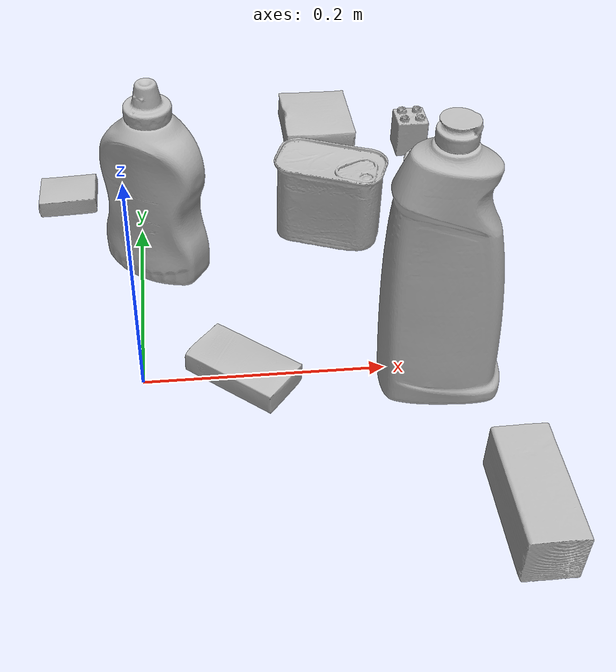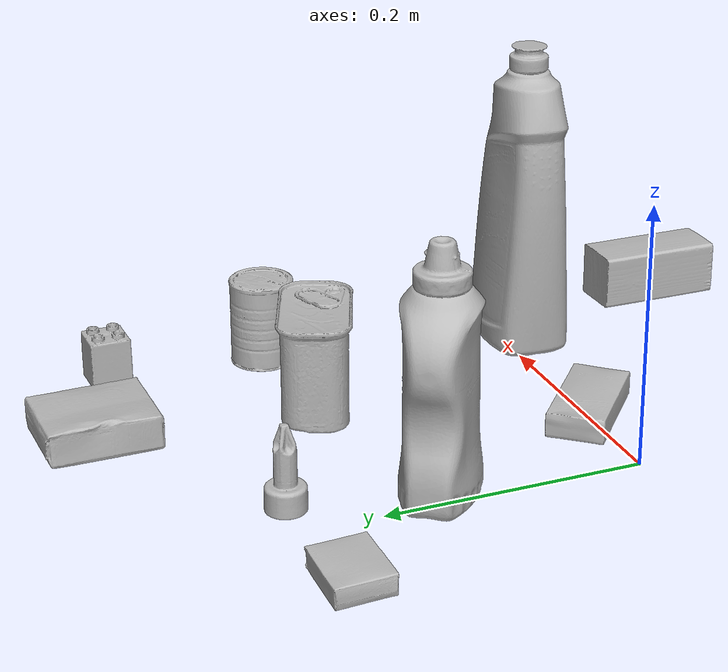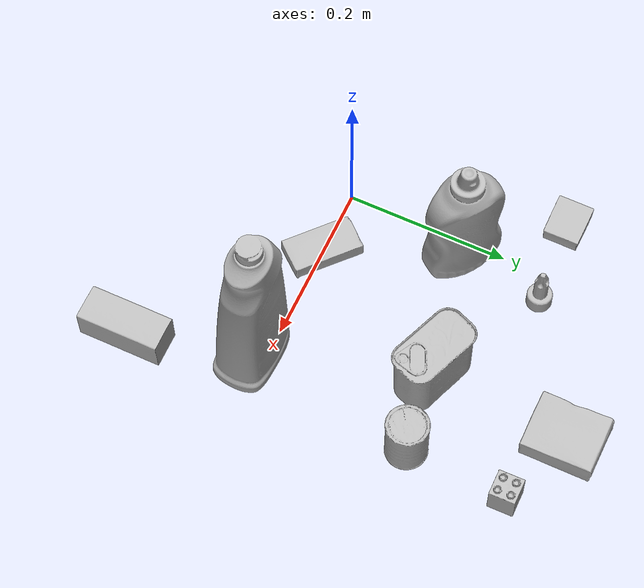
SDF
<sdf version="1.4">
  <world name="default">
    <light name="light1" type="point">
      <pose>0 0 1 0 0 0</pose>
      <diffuse>3 3 3 1</diffuse>
      <specular>3 3 3 1</specular>
    </light>
    <light name="light2" type="point">
      <pose>0 0.5 2 0 0 0</pose>
      <diffuse>1 1 1 1</diffuse>
      <specular>1 1 1 1</specular>
    </light>
    <light name="light3" type="point">
      <pose>0 0.5 2 0 0 0</pose>
      <diffuse>3 3 3 1</diffuse>
      <specular>3 3 3 1</specular>
    </light>
    <scene>
      <ambient>0.7 0.7 0.7</ambient>
    </scene>
    <model name="bottle1">
      <link name="link_bottle1">
        <collision name="default">
          <geometry>
            <mesh>
              <uri>model://bleach_cleanser/collision_meshes/collision.obj</uri>
              <scale>1.0 1.0 1.0</scale>
            </mesh>
          </geometry>
          <surface>
            <friction>
              <ode>
                <mu>0.5</mu>
                <mu2>0.5</mu2>
              </ode>
            </friction>
          <contact>
        <ode>
            <max_vel>0</max_vel>
            <min_depth>0.0001</min_depth>
            <kp>1e8</kp>
        </ode>
    </contact></surface>
        </collision>
        <visual name="default">
          <geometry>
            <mesh>
              <uri>model://bleach_cleanser/visual_meshes/visual.dae</uri>
              <scale>1.0 1.0 1.0</scale>
            </mesh>
          </geometry>
        </visual>
        <inertial>
          <mass>1.578364610671997</mass>
          <pose>0.00012193182919872925 0.003783882362768054 -0.024421613663434982 -0.07381669869228723 0.000420116582496686 -0.006875050642452563</pose>
          <inertia>
            <ixx>0.00768213</ixx>
            <iyy>0.0071586203</iyy>
            <izz>0.0013134446</izz>
            <ixy>0</ixy>
            <ixz>0</ixz>
            <iyz>0</iyz>
          </inertia>
        </inertial>
      </link>
      <pose>0.23852092027664185 -0.016236577183008194 0.12578417360782623 -0.00020068823645199348 1.5897468769211684e-05 1.5149589932156835</pose>
    </model>
    <model name="bottle2">
      <link name="link_bottle2">
        <collision name="default">
          <geometry>
            <mesh>
              <uri>model://mustard_bottle/collision_meshes/collision.obj</uri>
              <scale>1.0 1.0 1.0</scale>
            </mesh>
          </geometry>
          <surface>
            <friction>
              <ode>
                <mu>0.5</mu>
                <mu2>0.5</mu2>
              </ode>
            </friction>
          <contact>
        <ode>
            <max_vel>0</max_vel>
            <min_depth>0.0001</min_depth>
            <kp>1e8</kp>
        </ode>
    </contact></surface>
        </collision>
        <visual name="default">
          <geometry>
            <mesh>
              <uri>model://mustard_bottle/visual_meshes/visual.dae</uri>
              <scale>1.0 1.0 1.0</scale>
            </mesh>
          </geometry>
        </visual>
        <inertial>
          <mass>0.5896905064582825</mass>
          <pose>0.000503245391882956 -0.00015647403779439628 -0.0174757931381464 0.00041823284967905286 0.0009465779461724547 0.024853724225743102</pose>
          <inertia>
            <ixx>0.00163749</ixx>
            <iyy>0.0014367587</iyy>
            <izz>0.00043156123</izz>
            <ixy>0</ixy>
            <ixz>0</ixz>
            <iyz>0</iyz>
          </inertia>
        </inertial>
      </link>
      <pose>0.01533435471355915 0.15028764307498932 0.09615197777748108 1.4925893894218367e-05 1.676926987958088e-05 0.945883091136253</pose>
    </model>
    <model name="toy1">
      <link name="link_toy1">
        <collision name="default">
          <geometry>
            <mesh>
              <uri>model://b_lego_duplo/collision_meshes/collision.obj</uri>
              <scale>1.0 1.0 1.0</scale>
            </mesh>
          </geometry>
          <surface>
            <friction>
              <ode>
                <mu>0.5</mu>
                <mu2>0.5</mu2>
              </ode>
            </friction>
          <contact>
        <ode>
            <max_vel>0</max_vel>
            <min_depth>0.0001</min_depth>
            <kp>1e8</kp>
        </ode>
    </contact></surface>
        </collision>
        <visual name="default">
          <geometry>
            <mesh>
              <uri>model://b_lego_duplo/visual_meshes/visual.dae</uri>
              <scale>1.0 1.0 1.0</scale>
            </mesh>
          </geometry>
        </visual>
        <inertial>
          <mass>0.04927889630198479</mass>
          <pose>-0.00011053016351070255 -9.152428901870735e-06 0.0019294293597340584 -0.03749545918935276 -0.026353596882306905 0.4519115393215097</pose>
          <inertia>
            <ixx>1.0085294e-05</ixx>
            <iyy>1.015309e-05</iyy>
            <izz>8.985672e-06</izz>
            <ixy>0</ixy>
            <ixz>0</ixz>
            <iyz>0</iyz>
          </inertia>
        </inertial>
      </link>
      <pose>0.28255414962768555 0.32070907950401306 0.02181500568985939 6.852751146745442e-07 6.021638115996235e-07 0.014811774218607491</pose>
    </model>
    <model name="toy2">
      <link name="link_toy2">
        <collision name="default">
          <geometry>
            <mesh>
              <uri>model://d_toy_airplane/collision_meshes/collision.obj</uri>
              <scale>1.0 1.0 1.0</scale>
            </mesh>
          </geometry>
          <surface>
            <friction>
              <ode>
                <mu>0.5</mu>
                <mu2>0.5</mu2>
              </ode>
            </friction>
          <contact>
        <ode>
            <max_vel>0</max_vel>
            <min_depth>0.0001</min_depth>
            <kp>1e8</kp>
        </ode>
    </contact></surface>
        </collision>
        <visual name="default">
          <geometry>
            <mesh>
              <uri>model://d_toy_airplane/visual_meshes/visual.dae</uri>
              <scale>1.0 1.0 1.0</scale>
            </mesh>
          </geometry>
        </visual>
        <inertial>
          <mass>0.023543989285826683</mass>
          <pose>9.41029647947289e-05 -5.8093268307857215e-05 -0.011728093028068542 0.0002670074791080515 0.004678977428991067 0.5194709842729006</pose>
          <inertia>
            <ixx>7.058034e-06</ixx>
            <iyy>7.063356e-06</iyy>
            <izz>2.1308651e-06</izz>
            <ixy>0</ixy>
            <ixz>0</ixz>
            <iyz>0</iyz>
          </inertia>
        </inertial>
      </link>
      <pose>0.03485642001032829 0.2590695321559906 0.033339470624923706 0.00020597674161529066 -2.567588718452496e-05 -3.046027905743766</pose>
    </model>
    <model name="can1">
      <link name="link_can1">
        <collision name="default">
          <geometry>
            <mesh>
              <uri>model://master_chef_can/collision_meshes/collision.obj</uri>
              <scale>0.5 0.5 0.5</scale>
            </mesh>
          </geometry>
          <surface>
            <friction>
              <ode>
                <mu>0.5</mu>
                <mu2>0.5</mu2>
              </ode>
            </friction>
          <contact>
        <ode>
            <max_vel>0</max_vel>
            <min_depth>0.0001</min_depth>
            <kp>1e8</kp>
        </ode>
    </contact></surface>
        </collision>
        <visual name="default">
          <geometry>
            <mesh>
              <uri>model://master_chef_can/visual_meshes/visual.dae</uri>
              <scale>0.5 0.5 0.5</scale>
            </mesh>
          </geometry>
        </visual>
        <inertial>
          <mass>0.13489052653312683</mass>
          <pose>-4.6619643399026245e-05 1.392684936263322e-07 -5.080000119050965e-05 -0.0017995055981966167 0.0006479432683086387 -0.6102521024359563</pose>
          <inertia>
            <ixx>7.9171594e-05</ixx>
            <iyy>7.85889e-05</iyy>
            <izz>4.3748354e-05</izz>
            <ixy>0</ixy>
            <ixz>0</ixz>
            <iyz>0</iyz>
          </inertia>
        </inertial>
      </link>
      <pose>0.2738001346588135 0.1948949545621872 0.035301994532346725 -1.4044334176479946e-06 -1.1378406791879636e-06 -1.996592138169484</pose>
    </model>
    <model name="can2">
      <link name="link_can2">
        <collision name="default">
          <geometry>
            <mesh>
              <uri>model://potted_meat_can/collision_meshes/collision.obj</uri>
              <scale>1.0 1.0 1.0</scale>
            </mesh>
          </geometry>
          <surface>
            <friction>
              <ode>
                <mu>0.5</mu>
                <mu2>0.5</mu2>
              </ode>
            </friction>
          <contact>
        <ode>
            <max_vel>0</max_vel>
            <min_depth>0.0001</min_depth>
            <kp>1e8</kp>
        </ode>
    </contact></surface>
        </collision>
        <visual name="default">
          <geometry>
            <mesh>
              <uri>model://potted_meat_can/visual_meshes/visual.dae</uri>
              <scale>1.0 1.0 1.0</scale>
            </mesh>
          </geometry>
        </visual>
        <inertial>
          <mass>0.4512253701686859</mass>
          <pose>0.00022888150124344975 -5.9891150158364326e-05 -0.0006367433816194534 -0.028093371406289817 -0.007232609295346345 0.015406271951796056</pose>
          <inertia>
            <ixx>0.00058045425</ixx>
            <iyy>0.00035267006</iyy>
            <izz>0.00042216998</izz>
            <ixy>0</ixy>
            <ixz>0</ixz>
            <iyz>0</iyz>
          </inertia>
        </inertial>
      </link>
      <pose>0.1773936152458191 0.18425163626670837 0.04212799295783043 -2.3378540767346512e-08 -3.4957312769302853e-07 1.1863144694054002</pose>
    </model>
    <model name="box1">
      <link name="link_box1">
        <collision name="default">
          <geometry>
            <mesh>
              <uri>model://pudding_box/collision_meshes/collision.obj</uri>
              <scale>0.5 0.5 0.5</scale>
            </mesh>
          </geometry>
          <surface>
            <friction>
              <ode>
                <mu>0.5</mu>
                <mu2>0.5</mu2>
              </ode>
            </friction>
          <contact>
        <ode>
            <max_vel>0</max_vel>
            <min_depth>0.0001</min_depth>
            <kp>1e8</kp>
        </ode>
    </contact></surface>
        </collision>
        <visual name="default">
          <geometry>
            <mesh>
              <uri>model://pudding_box/visual_meshes/visual.dae</uri>
              <scale>0.5 0.5 0.5</scale>
            </mesh>
          </geometry>
        </visual>
        <inertial>
          <mass>0.02510015107691288</mass>
          <pose>0.00024474109522998333 0.0004033942532259971 -0.0002594413817860186 0.005213101332996491 -0.0066037987089797995 0.020079823298230236</pose>
          <inertia>
            <ixx>7.093607e-06</ixx>
            <iyy>4.7726294e-06</iyy>
            <izz>1.04755645e-05</izz>
            <ixy>0</ixy>
            <ixz>0</ixz>
            <iyz>0</iyz>
          </inertia>
        </inertial>
      </link>
      <pose>-0.07205264270305634 0.2520148754119873 0.009862905368208885 0.02234961980909655 -0.011390953304774656 -1.5620415725565437</pose>
    </model>
    <model name="box2">
      <link name="link_box2">
        <collision name="default">
          <geometry>
            <mesh>
              <uri>model://gelatin_box/collision_meshes/collision.obj</uri>
              <scale>1.0 1.0 1.0</scale>
            </mesh>
          </geometry>
          <surface>
            <friction>
              <ode>
                <mu>0.5</mu>
                <mu2>0.5</mu2>
              </ode>
            </friction>
          <contact>
        <ode>
            <max_vel>0</max_vel>
            <min_depth>0.0001</min_depth>
            <kp>1e8</kp>
        </ode>
    </contact></surface>
        </collision>
        <visual name="default">
          <geometry>
            <mesh>
              <uri>model://gelatin_box/visual_meshes/visual.dae</uri>
              <scale>1.0 1.0 1.0</scale>
            </mesh>
          </geometry>
        </visual>
        <inertial>
          <mass>0.2452477514743805</mass>
          <pose>0.000431961816502735 0.00011156871187267825 -0.0003640321083366871 -0.0010503720803081407 -0.004755818225601415 0.01644055574590794</pose>
          <inertia>
            <ixx>0.0001731249</ixx>
            <iyy>0.0001236622</iyy>
            <izz>0.00026353472</izz>
            <ixy>0</ixy>
            <ixz>0</ixz>
            <iyz>0</iyz>
          </inertia>
        </inertial>
      </link>
      <pose>0.1875784993171692 0.3552606999874115 0.015168312937021255 0.005596455305341915 -0.007303364734305436 -3.141011179469196</pose>
    </model>
    <model name="box3">
      <link name="link_box3">
        <collision name="default">
          <geometry>
            <mesh>
              <uri>model://sugar_box/collision_meshes/collision.obj</uri>
              <scale>0.5 0.5 0.5</scale>
            </mesh>
          </geometry>
          <surface>
            <friction>
              <ode>
                <mu>0.5</mu>
                <mu2>0.5</mu2>
              </ode>
            </friction>
          <contact>
        <ode>
            <max_vel>0</max_vel>
            <min_depth>0.0001</min_depth>
            <kp>1e8</kp>
        </ode>
    </contact></surface>
        </collision>
        <visual name="default">
          <geometry>
            <mesh>
              <uri>model://sugar_box/visual_meshes/visual.dae</uri>
              <scale>0.5 0.5 0.5</scale>
            </mesh>
          </geometry>
        </visual>
        <inertial>
          <mass>0.12277840822935104</mass>
          <pose>0.0005171863595023751 1.9245549992774613e-05 -0.00018182402709499002 -0.0004046257474220826 0.0010506635214397083 0.0026153787892127145</pose>
          <inertia>
            <ixx>2.5574656e-05</ixx>
            <iyy>8.2662555e-05</iyy>
            <izz>9.895694e-05</izz>
            <ixy>0</ixy>
            <ixz>0</ixz>
            <iyz>0</iyz>
          </inertia>
        </inertial>
      </link>
      <pose>0.08224546164274216 -0.00038429166306741536 0.011399298906326294 0.0007755395905222383 -0.023433304232185283 -0.7201791773360056</pose>
    </model>
    <model name="box4">
      <link name="link_box4">
        <collision name="default">
          <geometry>
            <mesh>
              <uri>model://wood_block/collision_meshes/collision.obj</uri>
              <scale>0.5 0.5 0.5</scale>
            </mesh>
          </geometry>
          <surface>
            <friction>
              <ode>
                <mu>0.5</mu>
                <mu2>0.5</mu2>
              </ode>
            </friction>
          <contact>
        <ode>
            <max_vel>0</max_vel>
            <min_depth>0.0001</min_depth>
            <kp>1e8</kp>
        </ode>
    </contact></surface>
        </collision>
        <visual name="default">
          <geometry>
            <mesh>
              <uri>model://wood_block/visual_meshes/visual.dae</uri>
              <scale>0.5 0.5 0.5</scale>
            </mesh>
          </geometry>
        </visual>
        <inertial>
          <mass>0.2967980206012726</mass>
          <pose>-2.9066577553749084e-06 -0.00028540470520965755 0.00013204291462898254 -0.05220902064674581 -0.005192696668457315 -0.006861378272965977</pose>
          <inertia>
            <ixx>9.929016e-05</ixx>
            <iyy>0.00031365763</iyy>
            <izz>0.00031248436</izz>
            <ixy>0</ixy>
            <ixz>0</ixz>
            <iyz>0</iyz>
          </inertia>
        </inertial>
      </link>
      <pose>0.2778804898262024 -0.16072529554367065 0.02262926660478115 -0.005208510848712024 0.0057187842595439395 -1.5675571585827348</pose>
    </model>
  <physics type="ode">
      <max_contacts>50</max_contacts>
      <ode>
        <solver>
          <type>quick</type>
          <iters>75</iters>
        </solver>
        <constraints>
          <contact_max_correcting_vel>0</contact_max_correcting_vel>
          <contact_surface_layer>0</contact_surface_layer>
        </constraints>
      </ode>
    </physics></world>
</sdf>
